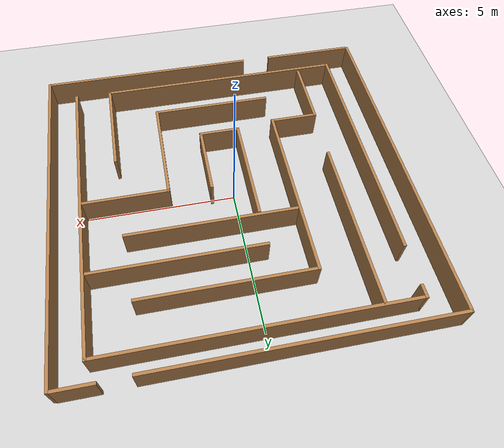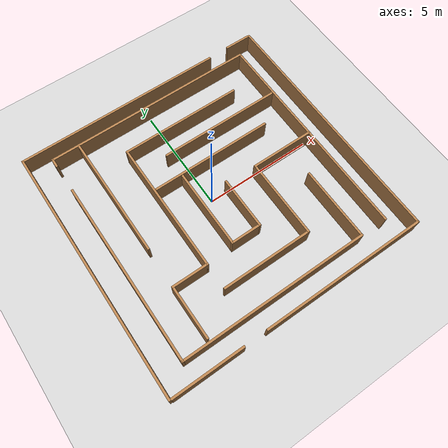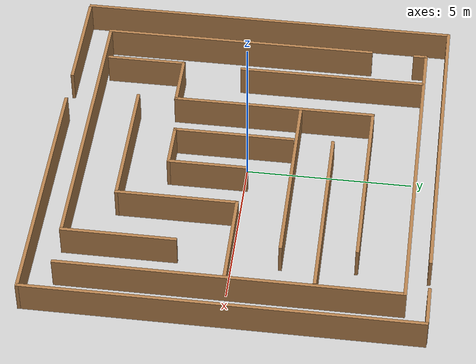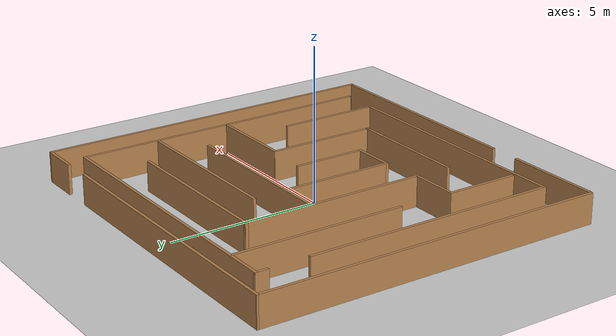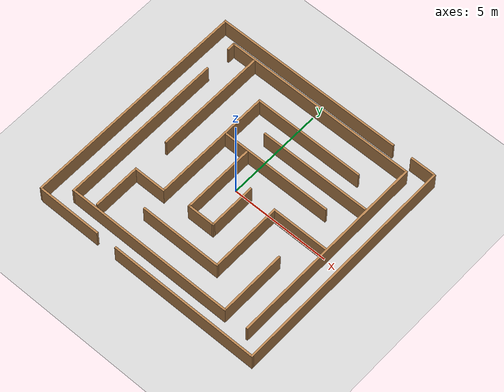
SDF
<sdf version="1.4">
  <world name="default">

    <scene>
      <ambient>0.4 0.4 0.4 1</ambient>
      <background>0.7 0.7 0.7 1</background>
      <shadows>true</shadows>
    </scene>

    <!-- A global light source -->
    <include>
      <uri>model://sun</uri>
    </include>

    <!-- A ground plane -->
    <include>
      <uri>model://ground_plane</uri>
    </include>

    <!-- Maze -->
    <include>
      <uri>model://maze</uri>
    </include>

    <!-- Aruco Marker Plugin -->
    <plugin name="gazebo_ros_link_attacher" filename="test_link_attacher.so" />

    <physics type="ode">
      <real_time_update_rate>1000.0</real_time_update_rate>
      <max_step_size>0.001</max_step_size>
      <real_time_factor>1</real_time_factor>
      <ode>
        <solver>
          <type>quick</type>
          <iters>150</iters>
          <precon_iters>0</precon_iters>
          <sor>1.400000</sor>
          <use_dynamic_moi_rescaling>1</use_dynamic_moi_rescaling>
        </solver>
        <constraints>
          <cfm>0.00001</cfm>
          <erp>0.2</erp>
          <contact_max_correcting_vel>2000.000000</contact_max_correcting_vel>
          <contact_surface_layer>0.01000</contact_surface_layer>
        </constraints>
      </ode>
    </physics>
  </world>

</sdf>

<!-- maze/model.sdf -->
<sdf version='1.7'>
  <model name='maze'>
    <pose>0.142996 -0.0175 0 0 -0 0</pose>
    <link name='Wall_0'>
      <collision name='Wall_0_Collision'>
        <geometry>
          <box>
            <size>8.45022 0.1 1</size>
          </box>
        </geometry>
        <pose>0 0 0.5 0 -0 0</pose>
      </collision>
      <visual name='Wall_0_Visual'>
        <pose>0 0 0.5 0 -0 0</pose>
        <geometry>
          <box>
            <size>8.45022 0.1 1</size>
          </box>
        </geometry>
        <material>
          <script>
            <uri>file://media/materials/scripts/gazebo.material</uri>
            <name>Gazebo/Wood</name>
          </script>
          <ambient>1 1 1 1</ambient>
        </material>
        <meta>
          <layer>0</layer>
        </meta>
      </visual>
      <pose>-4.873 -0.7845 0 0 -0 -1.5708</pose>
    </link>
    <link name='Wall_1'>
      <collision name='Wall_1_Collision'>
        <geometry>
          <box>
            <size>8.69977 0.1 1</size>
          </box>
        </geometry>
        <pose>0 0 0.5 0 -0 0</pose>
      </collision>
      <visual name='Wall_1_Visual'>
        <pose>0 0 0.5 0 -0 0</pose>
        <geometry>
          <box>
            <size>8.69977 0.1 1</size>
          </box>
        </geometry>
        <material>
          <script>
            <uri>file://media/materials/scripts/gazebo.material</uri>
            <name>Gazebo/Wood</name>
          </script>
          <ambient>1 1 1 1</ambient>
        </material>
        <meta>
          <layer>0</layer>
        </meta>
      </visual>
      <pose>-0.572996 -4.9595 0 0 -0 0</pose>
    </link>
    <link name='Wall_10'>
      <collision name='Wall_10_Collision'>
        <geometry>
          <box>
            <size>5.75 0.1 1</size>
          </box>
        </geometry>
        <pose>0 0 0.5 0 -0 0</pose>
      </collision>
      <visual name='Wall_10_Visual'>
        <pose>0 0 0.5 0 -0 0</pose>
        <geometry>
          <box>
            <size>5.75 0.1 1</size>
          </box>
        </geometry>
        <material>
          <script>
            <uri>file://media/materials/scripts/gazebo.material</uri>
            <name>Gazebo/Wood</name>
          </script>
          <ambient>1 1 1 1</ambient>
        </material>
        <meta>
          <layer>0</layer>
        </meta>
      </visual>
      <pose>-3.61772 2.2596 0 0 -0 1.5708</pose>
    </link>
    <link name='Wall_12'>
      <collision name='Wall_12_Collision'>
        <geometry>
          <box>
            <size>0.45 0.1 1</size>
          </box>
        </geometry>
        <pose>0 0 0.5 0 -0 0</pose>
      </collision>
      <visual name='Wall_12_Visual'>
        <pose>0 0 0.5 0 -0 0</pose>
        <geometry>
          <box>
            <size>0.45 0.1 1</size>
          </box>
        </geometry>
        <material>
          <script>
            <uri>file://media/materials/scripts/gazebo.material</uri>
            <name>Gazebo/Wood</name>
          </script>
          <ambient>1 1 1 1</ambient>
        </material>
        <meta>
          <layer>0</layer>
        </meta>
      </visual>
      <pose>-4.869 4.9595 0 0 -0 1.5708</pose>
    </link>
    <link name='Wall_13'>
      <collision name='Wall_13_Collision'>
        <geometry>
          <box>
            <size>9.95 0.1 1</size>
          </box>
        </geometry>
        <pose>0 0 0.5 0 -0 0</pose>
      </collision>
      <visual name='Wall_13_Visual'>
        <pose>0 0 0.5 0 -0 0</pose>
        <geometry>
          <box>
            <size>9.95 0.1 1</size>
          </box>
        </geometry>
        <material>
          <script>
            <uri>file://media/materials/scripts/gazebo.material</uri>
            <name>Gazebo/Wood</name>
          </script>
          <ambient>1 1 1 1</ambient>
        </material>
        <meta>
          <layer>0</layer>
        </meta>
      </visual>
      <pose>0.056004 5.1345 0 0 -0 0</pose>
    </link>
    <link name='Wall_15'>
      <collision name='Wall_15_Collision'>
        <geometry>
          <box>
            <size>10.1997 0.1 1</size>
          </box>
        </geometry>
        <pose>0 0 0.5 0 -0 0</pose>
      </collision>
      <visual name='Wall_15_Visual'>
        <pose>0 0 0.5 0 -0 0</pose>
        <geometry>
          <box>
            <size>10.1997 0.1 1</size>
          </box>
        </geometry>
        <material>
          <script>
            <uri>file://media/materials/scripts/gazebo.material</uri>
            <name>Gazebo/Wood</name>
          </script>
          <ambient>1 1 1 1</ambient>
        </material>
        <meta>
          <layer>0</layer>
        </meta>
      </visual>
      <pose>4.981 0.0845 0 0 -0 -1.5708</pose>
    </link>
    <link name='Wall_17'>
      <collision name='Wall_17_Collision'>
        <geometry>
          <box>
            <size>2.95048 0.1 1</size>
          </box>
        </geometry>
        <pose>0 0 0.5 0 -0 0</pose>
      </collision>
      <visual name='Wall_17_Visual'>
        <pose>0 0 0.5 0 -0 0</pose>
        <geometry>
          <box>
            <size>2.95048 0.1 1</size>
          </box>
        </geometry>
        <material>
          <script>
            <uri>file://media/materials/scripts/gazebo.material</uri>
            <name>Gazebo/Wood</name>
          </script>
          <ambient>1 1 1 1</ambient>
        </material>
        <meta>
          <layer>0</layer>
        </meta>
      </visual>
      <pose>3.506 -0.0165 0 0 -0 3.14159</pose>
    </link>
    <link name='Wall_19'>
      <collision name='Wall_19_Collision'>
        <geometry>
          <box>
            <size>3.7 0.1 1</size>
          </box>
        </geometry>
        <pose>0 0 0.5 0 -0 0</pose>
      </collision>
      <visual name='Wall_19_Visual'>
        <pose>0 0 0.5 0 -0 0</pose>
        <geometry>
          <box>
            <size>3.7 0.1 1</size>
          </box>
        </geometry>
        <material>
          <script>
            <uri>file://media/materials/scripts/gazebo.material</uri>
            <name>Gazebo/Wood</name>
          </script>
          <ambient>1 1 1 1</ambient>
        </material>
        <meta>
          <layer>0</layer>
        </meta>
      </visual>
      <pose>2.067 -1.8165 0 0 -0 -1.5708</pose>
    </link>
    <link name='Wall_2'>
      <collision name='Wall_2_Collision'>
        <geometry>
          <box>
            <size>3.44978 0.1 1</size>
          </box>
        </geometry>
        <pose>0 0 0.5 0 -0 0</pose>
      </collision>
      <visual name='Wall_2_Visual'>
        <pose>0 0 0.5 0 -0 0</pose>
        <geometry>
          <box>
            <size>3.44978 0.1 1</size>
          </box>
        </geometry>
        <material>
          <script>
            <uri>file://media/materials/scripts/gazebo.material</uri>
            <name>Gazebo/Wood</name>
          </script>
          <ambient>1 1 1 1</ambient>
        </material>
        <meta>
          <layer>0</layer>
        </meta>
      </visual>
      <pose>3.727 -3.2845 0 0 -0 1.5708</pose>
    </link>
    <link name='Wall_20'>
      <collision name='Wall_20_Collision'>
        <geometry>
          <box>
            <size>4.20012 0.1 1</size>
          </box>
        </geometry>
        <pose>0 0 0.5 0 -0 0</pose>
      </collision>
      <visual name='Wall_20_Visual'>
        <pose>0 0 0.5 0 -0 0</pose>
        <geometry>
          <box>
            <size>4.20012 0.1 1</size>
          </box>
        </geometry>
        <material>
          <script>
            <uri>file://media/materials/scripts/gazebo.material</uri>
            <name>Gazebo/Wood</name>
          </script>
          <ambient>1 1 1 1</ambient>
        </material>
        <meta>
          <layer>0</layer>
        </meta>
      </visual>
      <pose>0.017004 -3.6165 0 0 -0 3.14159</pose>
    </link>
    <link name='Wall_22'>
      <collision name='Wall_22_Collision'>
        <geometry>
          <box>
            <size>5.69967 0.1 1</size>
          </box>
        </geometry>
        <pose>0 0 0.5 0 -0 0</pose>
      </collision>
      <visual name='Wall_22_Visual'>
        <pose>0 0 0.5 0 -0 0</pose>
        <geometry>
          <box>
            <size>5.69967 0.1 1</size>
          </box>
        </geometry>
        <material>
          <script>
            <uri>file://media/materials/scripts/gazebo.material</uri>
            <name>Gazebo/Wood</name>
          </script>
          <ambient>1 1 1 1</ambient>
        </material>
        <meta>
          <layer>0</layer>
        </meta>
      </visual>
      <pose>0.849004 1.4465 0 0 -0 0</pose>
    </link>
    <link name='Wall_24'>
      <collision name='Wall_24_Collision'>
        <geometry>
          <box>
            <size>5.70012 0.1 1</size>
          </box>
        </geometry>
        <pose>0 0 0.5 0 -0 0</pose>
      </collision>
      <visual name='Wall_24_Visual'>
        <pose>0 0 0.5 0 -0 0</pose>
        <geometry>
          <box>
            <size>5.70012 0.1 1</size>
          </box>
        </geometry>
        <material>
          <script>
            <uri>file://media/materials/scripts/gazebo.material</uri>
            <name>Gazebo/Wood</name>
          </script>
          <ambient>1 1 1 1</ambient>
        </material>
        <meta>
          <layer>0</layer>
        </meta>
      </visual>
      <pose>2.068 2.5605 0 0 -0 3.14159</pose>
    </link>
    <link name='Wall_26'>
      <collision name='Wall_26_Collision'>
        <geometry>
          <box>
            <size>3.69992 0.1 1</size>
          </box>
        </geometry>
        <pose>0 0 0.5 0 -0 0</pose>
      </collision>
      <visual name='Wall_26_Visual'>
        <pose>0 0 0.5 0 -0 0</pose>
        <geometry>
          <box>
            <size>3.69992 0.1 1</size>
          </box>
        </geometry>
        <material>
          <script>
            <uri>file://media/materials/scripts/gazebo.material</uri>
            <name>Gazebo/Wood</name>
          </script>
          <ambient>1 1 1 1</ambient>
        </material>
        <meta>
          <layer>0</layer>
        </meta>
      </visual>
      <pose>-0.720996 -0.4705 0 0 -0 -1.5708</pose>
    </link>
    <link name='Wall_27'>
      <collision name='Wall_27_Collision'>
        <geometry>
          <box>
            <size>1.45045 0.1 1</size>
          </box>
        </geometry>
        <pose>0 0 0.5 0 -0 0</pose>
      </collision>
      <visual name='Wall_27_Visual'>
        <pose>0 0 0.5 0 -0 0</pose>
        <geometry>
          <box>
            <size>1.45045 0.1 1</size>
          </box>
        </geometry>
        <material>
          <script>
            <uri>file://media/materials/scripts/gazebo.material</uri>
            <name>Gazebo/Wood</name>
          </script>
          <ambient>1 1 1 1</ambient>
        </material>
        <meta>
          <layer>0</layer>
        </meta>
      </visual>
      <pose>-0.045996 -2.2705 0 0 -0 0</pose>
    </link>
    <link name='Wall_28'>
      <collision name='Wall_28_Collision'>
        <geometry>
          <box>
            <size>2.45008 0.1 1</size>
          </box>
        </geometry>
        <pose>0 0 0.5 0 -0 0</pose>
      </collision>
      <visual name='Wall_28_Visual'>
        <pose>0 0 0.5 0 -0 0</pose>
        <geometry>
          <box>
            <size>2.45008 0.1 1</size>
          </box>
        </geometry>
        <material>
          <script>
            <uri>file://media/materials/scripts/gazebo.material</uri>
            <name>Gazebo/Wood</name>
          </script>
          <ambient>1 1 1 1</ambient>
        </material>
        <meta>
          <layer>0</layer>
        </meta>
      </visual>
      <pose>0.629004 -1.0955 0 0 -0 1.5708</pose>
    </link>
    <link name='Wall_31'>
      <collision name='Wall_31_Collision'>
        <geometry>
          <box>
            <size>11.676 0.1 1</size>
          </box>
        </geometry>
        <pose>0 0 0.5 0 -0 0</pose>
      </collision>
      <visual name='Wall_31_Visual'>
        <pose>0 0 0.5 0 -0 0</pose>
        <geometry>
          <box>
            <size>11.676 0.1 1</size>
          </box>
        </geometry>
        <material>
          <script>
            <uri>file://media/materials/scripts/gazebo.material</uri>
            <name>Gazebo/Wood</name>
          </script>
          <ambient>1 1 1 1</ambient>
        </material>
        <meta>
          <layer>0</layer>
        </meta>
      </visual>
      <pose>-5.972 -0.0015 0 0 -0 -1.5727</pose>
    </link>
    <link name='Wall_33'>
      <collision name='Wall_33_Collision'>
        <geometry>
          <box>
            <size>11.7 0.1 1</size>
          </box>
        </geometry>
        <pose>0 0 0.5 0 -0 0</pose>
      </collision>
      <visual name='Wall_33_Visual'>
        <pose>0 0 0.5 0 -0 0</pose>
        <geometry>
          <box>
            <size>11.7 0.1 1</size>
          </box>
        </geometry>
        <material>
          <script>
            <uri>file://media/materials/scripts/gazebo.material</uri>
            <name>Gazebo/Wood</name>
          </script>
          <ambient>1 1 1 1</ambient>
        </material>
        <meta>
          <layer>0</layer>
        </meta>
      </visual>
      <pose>5.983 -0.0025 0 0 -0 -1.5708</pose>
    </link>
    <link name='Wall_35'>
      <collision name='Wall_35_Collision'>
        <geometry>
          <box>
            <size>9.75 0.1 1</size>
          </box>
        </geometry>
        <pose>0 0 0.5 0 -0 0</pose>
      </collision>
      <visual name='Wall_35_Visual'>
        <pose>0 0 0.5 0 -0 0</pose>
        <geometry>
          <box>
            <size>9.75 0.1 1</size>
          </box>
        </geometry>
        <material>
          <script>
            <uri>file://media/materials/scripts/gazebo.material</uri>
            <name>Gazebo/Wood</name>
          </script>
          <ambient>1 1 1 1</ambient>
        </material>
        <meta>
          <layer>0</layer>
        </meta>
      </visual>
      <pose>-1.136 5.7865 0 0 -0 0</pose>
    </link>
    <link name='Wall_37'>
      <collision name='Wall_37_Collision'>
        <geometry>
          <box>
            <size>1.25 0.1 1</size>
          </box>
        </geometry>
        <pose>0 0 0.5 0 -0 0</pose>
      </collision>
      <visual name='Wall_37_Visual'>
        <pose>0 0 0.5 0 -0 0</pose>
        <geometry>
          <box>
            <size>1.25 0.1 1</size>
          </box>
        </geometry>
        <material>
          <script>
            <uri>file://media/materials/scripts/gazebo.material</uri>
            <name>Gazebo/Wood</name>
          </script>
          <ambient>1 1 1 1</ambient>
        </material>
        <meta>
          <layer>0</layer>
        </meta>
      </visual>
      <pose>5.315 5.8145 0 0 -0 0</pose>
    </link>
    <link name='Wall_39'>
      <collision name='Wall_39_Collision'>
        <geometry>
          <box>
            <size>7.70017 0.1 1</size>
          </box>
        </geometry>
        <pose>0 0 0.5 0 -0 0</pose>
      </collision>
      <visual name='Wall_39_Visual'>
        <pose>0 0 0.5 0 -0 0</pose>
        <geometry>
          <box>
            <size>7.70017 0.1 1</size>
          </box>
        </geometry>
        <material>
          <script>
            <uri>file://media/materials/scripts/gazebo.material</uri>
            <name>Gazebo/Wood</name>
          </script>
          <ambient>1 1 1 1</ambient>
        </material>
        <meta>
          <layer>0</layer>
        </meta>
      </visual>
      <pose>2.183 -5.8145 0 0 -0 3.14159</pose>
    </link>
    <link name='Wall_4'>
      <collision name='Wall_4_Collision'>
        <geometry>
          <box>
            <size>2.44978 0.1 1</size>
          </box>
        </geometry>
        <pose>0 0 0.5 0 -0 0</pose>
      </collision>
      <visual name='Wall_4_Visual'>
        <pose>0 0 0.5 0 -0 0</pose>
        <geometry>
          <box>
            <size>2.44978 0.1 1</size>
          </box>
        </geometry>
        <material>
          <script>
            <uri>file://media/materials/scripts/gazebo.material</uri>
            <name>Gazebo/Wood</name>
          </script>
          <ambient>1 1 1 1</ambient>
        </material>
        <meta>
          <layer>0</layer>
        </meta>
      </visual>
      <pose>-3.656 -3.6085 0 0 -0 1.5708</pose>
    </link>
    <link name='Wall_42'>
      <collision name='Wall_42_Collision'>
        <geometry>
          <box>
            <size>3.25 0.1 1</size>
          </box>
        </geometry>
        <pose>0 0 0.5 0 -0 0</pose>
      </collision>
      <visual name='Wall_42_Visual'>
        <pose>0 0 0.5 0 -0 0</pose>
        <geometry>
          <box>
            <size>3.25 0.1 1</size>
          </box>
        </geometry>
        <material>
          <script>
            <uri>file://media/materials/scripts/gazebo.material</uri>
            <name>Gazebo/Wood</name>
          </script>
          <ambient>1 1 1 1</ambient>
        </material>
        <meta>
          <layer>0</layer>
        </meta>
      </visual>
      <pose>-4.305 -5.8145 0 0 -0 3.14159</pose>
    </link>
    <link name='Wall_6'>
      <collision name='Wall_6_Collision'>
        <geometry>
          <box>
            <size>1.7 0.1 1</size>
          </box>
        </geometry>
        <pose>0 0 0.5 0 -0 0</pose>
      </collision>
      <visual name='Wall_6_Visual'>
        <pose>0 0 0.5 0 -0 0</pose>
        <geometry>
          <box>
            <size>1.7 0.1 1</size>
          </box>
        </geometry>
        <material>
          <script>
            <uri>file://media/materials/scripts/gazebo.material</uri>
            <name>Gazebo/Wood</name>
          </script>
          <ambient>1 1 1 1</ambient>
        </material>
        <meta>
          <layer>0</layer>
        </meta>
      </visual>
      <pose>-2.856 -2.4335 0 0 -0 0</pose>
    </link>
    <link name='Wall_7'>
      <collision name='Wall_7_Collision'>
        <geometry>
          <box>
            <size>6.2 0.1 1</size>
          </box>
        </geometry>
        <pose>0 0 0.5 0 -0 0</pose>
      </collision>
      <visual name='Wall_7_Visual'>
        <pose>0 0 0.5 0 -0 0</pose>
        <geometry>
          <box>
            <size>6.2 0.1 1</size>
          </box>
        </geometry>
        <material>
          <script>
            <uri>file://media/materials/scripts/gazebo.material</uri>
            <name>Gazebo/Wood</name>
          </script>
          <ambient>1 1 1 1</ambient>
        </material>
        <meta>
          <layer>0</layer>
        </meta>
      </visual>
      <pose>-2.056 0.6165 0 0 -0 1.5708</pose>
    </link>
    <link name='Wall_8'>
      <collision name='Wall_8_Collision'>
        <geometry>
          <box>
            <size>5.70042 0.1 1</size>
          </box>
        </geometry>
        <pose>0 0 0.5 0 -0 0</pose>
      </collision>
      <visual name='Wall_8_Visual'>
        <pose>0 0 0.5 0 -0 0</pose>
        <geometry>
          <box>
            <size>5.70042 0.1 1</size>
          </box>
        </geometry>
        <material>
          <script>
            <uri>file://media/materials/scripts/gazebo.material</uri>
            <name>Gazebo/Wood</name>
          </script>
          <ambient>1 1 1 1</ambient>
        </material>
        <meta>
          <layer>0</layer>
        </meta>
      </visual>
      <pose>0.744004 3.6665 0 0 -0 0</pose>
    </link>
    <static>1</static>
  </model>
</sdf>
